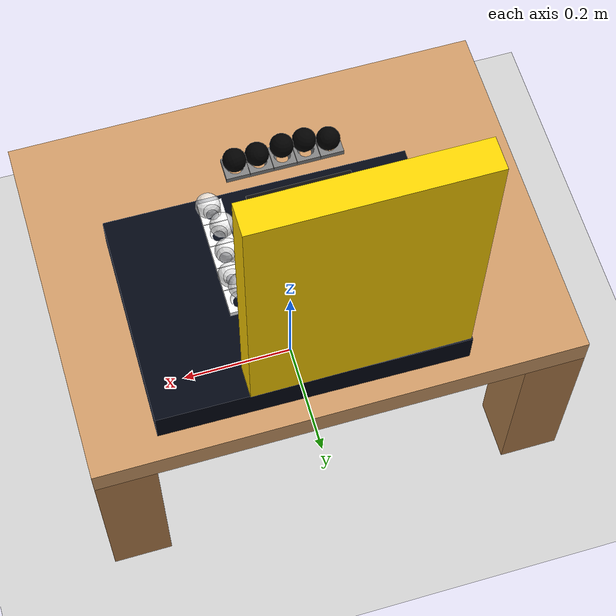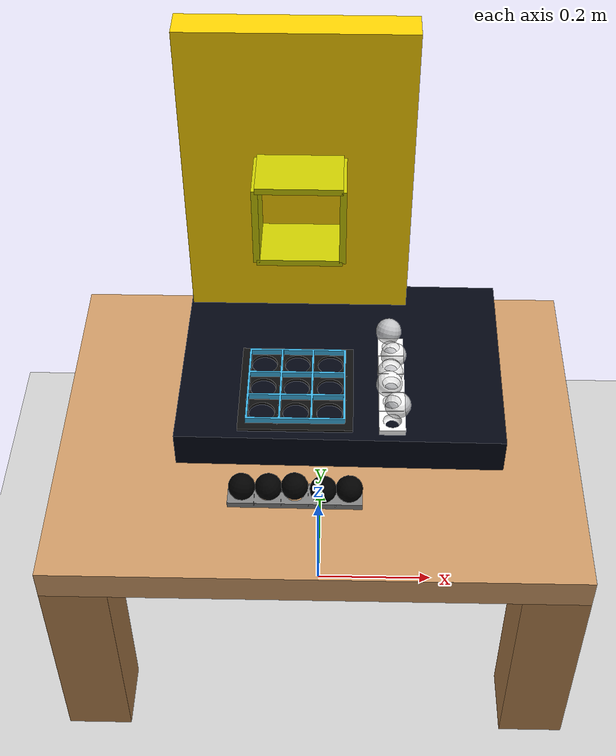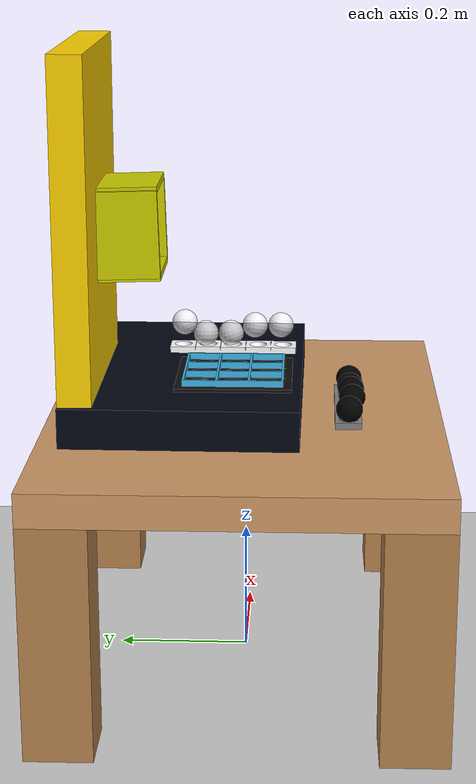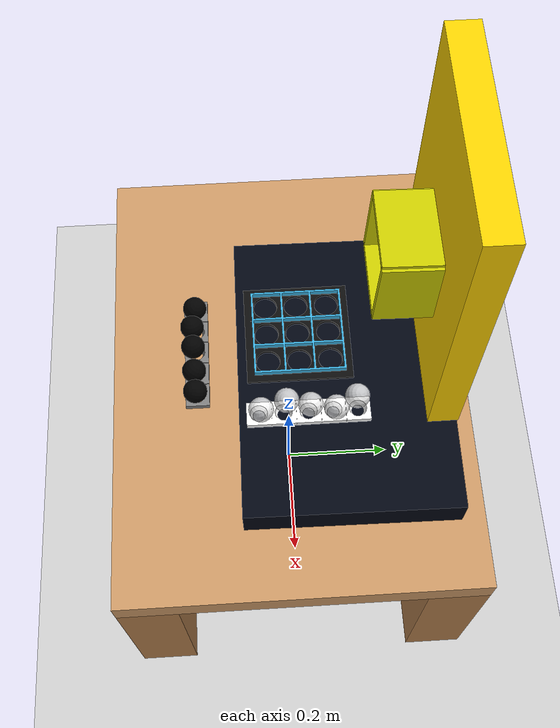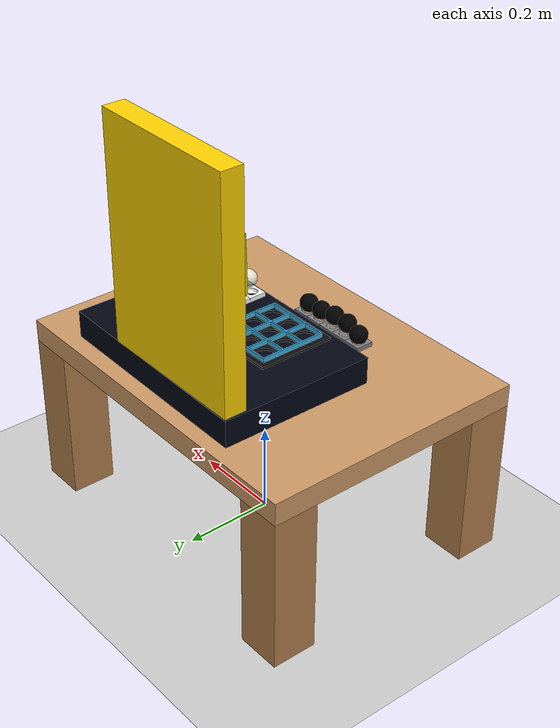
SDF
<sdf version="1.10">
 <world name="WORKINGPROTO">
  <physics name="1ms" type="ignored">
   <max_step_size>0.001</max_step_size>
   <real_time_factor>1</real_time_factor>
   <real_time_update_rate>1000</real_time_update_rate>
  </physics>
  <plugin name="gz::sim::systems::Physics" filename="gz-sim-physics-system"/>
  <plugin name="gz::sim::systems::UserCommands" filename="gz-sim-user-commands-system"/>
  <plugin name="gz::sim::systems::SceneBroadcaster" filename="gz-sim-scene-broadcaster-system"/>
  <gravity>0 0 -9.8000000000000007</gravity>
  <magnetic_field>5.5644999999999998e-06 2.2875799999999999e-05 -4.2388400000000002e-05</magnetic_field>
  <atmosphere type="adiabatic"/>
  <scene>
   <ambient>0.400000006 0.400000006 0.400000006 1</ambient>
   <background>0.699999988 0.699999988 0.699999988 1</background>
   <shadows>true</shadows>
  </scene>
  <model name="ground_plane">
   <static>true</static>
   <link name="link">
    <collision name="collision">
     <geometry><plane><normal>0 0 1</normal><size>100 100</size></plane></geometry>
     <surface>
      <contact><collide_bitmask>65535</collide_bitmask><ode><mu>100</mu><mu2>50</mu2></ode></contact>
      <friction><ode><mu>100</mu><mu2>50</mu2></ode></friction>
     </surface>
    </collision>
    <visual name="visual">
     <cast_shadows>false</cast_shadows>
     <geometry><plane><normal>0 0 1</normal><size>100 100</size></plane></geometry>
     <material>
      <ambient>0.800000012 0.800000012 0.800000012 1</ambient>
      <diffuse>0.800000012 0.800000012 0.800000012 1</diffuse>
      <specular>0 0 0 1</specular>
     </material>
    </visual>
    <inertial>
     <mass>1</mass>
     <inertia><ixx>1</ixx><ixy>0</ixy><ixz>0</ixz><iyy>1</iyy><iyz>0</iyz><izz>1</izz></inertia>
    </inertial>
   </link>
  </model>
  <model name="study_table">
   <static>true</static>
   <link name="table_link">
    <inertial>
     <mass>50</mass>
     <inertia><ixx>10</ixx><iyy>8</iyy><izz>6</izz><ixy>0</ixy><ixz>0</ixz><iyz>0</iyz></inertia>
    </inertial>
    <visual name="table_top">
     <pose>0 0 0.375 0 0 0</pose>
     <geometry><box><size>0.80000000000000004 0.59999999999999998 0.050000000000000003</size></box></geometry>
     <material>
      <ambient>0.800000012 0.600000024 0.400000006 1</ambient>
      <diffuse>0.800000012 0.600000024 0.400000006 1</diffuse>
     </material>
    </visual>
    <visual name="table_leg1">
     <pose>0.34999999999999998 0.25 0.17499999999999999 0 0 0</pose>
     <geometry><box><size>0.10000000000000001 0.10000000000000001 0.34999999999999998</size></box></geometry>
     <material>
      <ambient>0.699999988 0.5 0.300000012 1</ambient>
      <diffuse>0.699999988 0.5 0.300000012 1</diffuse>
     </material>
    </visual>
    <visual name="table_leg2">
     <pose>-0.34999999999999998 0.25 0.17499999999999999 0 0 0</pose>
     <geometry><box><size>0.10000000000000001 0.10000000000000001 0.34999999999999998</size></box></geometry>
     <material>
      <ambient>0.699999988 0.5 0.300000012 1</ambient>
      <diffuse>0.699999988 0.5 0.300000012 1</diffuse>
     </material>
    </visual>
    <visual name="table_leg3">
     <pose>0.34999999999999998 -0.25 0.17499999999999999 0 0 0</pose>
     <geometry><box><size>0.10000000000000001 0.10000000000000001 0.34999999999999998</size></box></geometry>
     <material>
      <ambient>0.699999988 0.5 0.300000012 1</ambient>
      <diffuse>0.699999988 0.5 0.300000012 1</diffuse>
     </material>
    </visual>
    <visual name="table_leg4">
     <pose>-0.34999999999999998 -0.25 0.17499999999999999 0 0 0</pose>
     <geometry><box><size>0.10000000000000001 0.10000000000000001 0.34999999999999998</size></box></geometry>
     <material>
      <ambient>0.699999988 0.5 0.300000012 1</ambient>
      <diffuse>0.699999988 0.5 0.300000012 1</diffuse>
     </material>
    </visual>
    <collision name="table_collision">
     <pose>0 0 0.375 0 0 0</pose>
     <geometry><box><size>0.80000000000000004 0.59999999999999998 0.050000000000000003</size></box></geometry>
    </collision>
   </link>
  </model>
  <model name="guard_rail">
   <static>true</static>
   <pose>-0.13008174300193787 -0.079355299472808838 0.43519699573516846 0 0 0</pose>
   <link name="rail_link">
    <inertial>
     <mass>10</mass>
     <inertia><ixx>1</ixx><iyy>1</iyy><izz>1</izz><ixy>0</ixy><ixz>0</ixz><iyz>0</iyz></inertia>
    </inertial>
    <visual name="rail_visual">
     <geometry>
      <mesh>
       <scale>0.001 0.001 0.001</scale>
       <uri>file:///home/sukritchopra/ros2_ws/src/jetrover_description/models/jetrover/meshes_1/EXTERNAL_MESHES/GUARD_RAILS6.stl</uri>
      </mesh>
     </geometry>
     <material>
      <ambient>0.235294119 0.70588237 0.90196079 1</ambient>
      <diffuse>0.235294119 0.70588237 0.90196079 1</diffuse>
     </material>
    </visual>
    <collision name="rail_collision">
     <geometry>
      <mesh>
       <scale>0.001 0.001 0.001</scale>
       <uri>file:///home/sukritchopra/ros2_ws/src/jetrover_description/models/jetrover/meshes_1/EXTERNAL_MESHES/GUARD_RAILS6.stl</uri>
      </mesh>
     </geometry>
    </collision>
   </link>
  </model>
  <model name="wall">
   <static>true</static>
   <pose>-0.035567201673984528 0.23947399854660034 0.86184102296829224 0 0 0</pose>
   <link name="wall_link">
    <inertial>
     <mass>20000000</mass>
     <inertia>
      <ixx>1.6699999999999999</ixx>
      <iyy>2.6699999999999999</iyy>
      <izz>1.0700000000000001</izz>
      <ixy>0</ixy>
      <ixz>0</ixz>
      <iyz>0</iyz>
     </inertia>
    </inertial>
    <visual name="wall_base">
     <pose>0 0 -0.14999999999999999 0 0 0</pose>
     <geometry><box><size>0.34999999999999998 0.050000000000000003 0.5</size></box></geometry>
     <material><ambient>1 0.824000001 0 1</ambient><diffuse>1 0.824000001 0 1</diffuse></material>
    </visual>
    <collision name="wall_base_collision">
     <pose>0 0 -0.14999999999999999 0 0 0</pose>
     <geometry><box><size>0.34999999999999998 0.050000000000000003 0.49999999999999978</size></box></geometry>
    </collision>
   </link>
  </model>
  <model name="enclosure_floor">
   <static>true</static>
   <pose>0.18506811559200287 0.086792588233947754 0.42550107836723328 1.5699999781232277 -7.7078375414138466e-06 1.5605699752823263</pose>
   <link name="enclosure_floor_link">
    <inertial>
     <mass>20000000</mass>
     <inertia>
      <ixx>1.6699999999999999</ixx>
      <iyy>2.6699999999999999</iyy>
      <izz>1.0700000000000001</izz>
      <ixy>0</ixy>
      <ixz>0</ixz>
      <iyz>0</iyz>
     </inertia>
    </inertial>
    <visual name="enclosure_floor_base">
     <pose>0 0 -0.14999999999999999 0 0 0</pose>
     <geometry><box><size>0.34999999999999998 0.070000000000000007 0.5</size></box></geometry>
     <material>
      <ambient>0 0.00400000019 0.0149999997 1</ambient>
      <diffuse>0.00400000019 0.0199999996 0.0700000003 1</diffuse>
     </material>
    </visual>
    <collision name="enclosure_floor_base_collision">
     <pose>0 0 -0.14999999999999999 0 0 0</pose>
     <geometry><box><size>0.34999999999999998 0.070000000000000007 0.5</size></box></geometry>
    </collision>
   </link>
  </model>
  <model name="tictactoe_game">
   <static>true</static>
   <pose>-0.12158672511577606 -0.071379348635673523 0.44987404346466064 8.8383396642251733e-08 9.0853599959604141e-07 -0.00040046500550608281</pose>
   <link name="board">
    <inertial>
     <mass>2</mass>
     <inertia>
      <ixx>0.10000000000000001</ixx>
      <iyy>0.10000000000000001</iyy>
      <izz>0.10000000000000001</izz>
      <ixy>0</ixy>
      <ixz>0</ixz>
      <iyz>0</iyz>
     </inertia>
    </inertial>
    <visual name="board_visual">
     <geometry>
      <mesh>
       <scale>0.001 0.001 0.001</scale>
       <uri>file:///home/sukritchopra/ros2_ws/src/jetrover_description/models/jetrover/meshes_1/EXTERNAL_MESHES/tictactoe_board3.stl</uri>
      </mesh>
     </geometry>
     <material>
      <ambient>0.0500000007 0.0500000007 0.0500000007 1</ambient>
      <diffuse>0.0500000007 0.0500000007 0.0500000007 1</diffuse>
     </material>
    </visual>
    <collision name="board_collision">
     <geometry>
      <mesh>
       <scale>0.001 0.001 0.001</scale>
       <uri>file:///home/sukritchopra/ros2_ws/src/jetrover_description/models/jetrover/meshes_1/EXTERNAL_MESHES/tictactoe_board3.stl</uri>
      </mesh>
     </geometry>
    </collision>
   </link>
  </model>
  <model name="o_piece_1">
   <static>false</static>
   <pose>0.048889998346567147 -0.15959000587463376 0.43411752581596375 1.0995602395153419 0.00095126979915065952 0.17904404388948791</pose>
   <link name="o_link">
    <inertial>
     <mass>0.0027</mass>
     <inertia><ixx>0.00001</ixx><iyy>0.00001</iyy><izz>0.00001</izz><ixy>0</ixy><ixz>0</ixz><iyz>0</iyz></inertia>
    </inertial>
    <visual name="o_visual">
     <geometry><sphere><radius>0.02</radius></sphere></geometry>
     <material><ambient>0 0 0 1</ambient><diffuse>0 0 0 1</diffuse></material>
    </visual>
    <collision name="o_collision"><geometry><sphere><radius>0.02</radius></sphere></geometry></collision>
   </link>
  </model>
  <model name="o_piece_2">
   <static>false</static>
   <pose>-0.031720213592052446 -0.16102899610996241 0.44032600522041315 0.088685103219420844 -0.13121000430286445 -0.045394301521805437</pose>
   <link name="o_link">
    <inertial>
     <mass>0.0027</mass>
     <inertia><ixx>0.00001</ixx><iyy>0.00001</iyy><izz>0.00001</izz><ixy>0</ixy><ixz>0</ixz><iyz>0</iyz></inertia>
    </inertial>
    <visual name="o_visual">
     <geometry><sphere><radius>0.02</radius></sphere></geometry>
     <material><ambient>0 0 0 1</ambient><diffuse>0 0 0 1</diffuse></material>
    </visual>
    <collision name="o_collision"><geometry><sphere><radius>0.02</radius></sphere></geometry></collision>
   </link>
  </model>
  <model name="o_piece_3">
   <static>false</static>
   <pose>-0.11018435657024386 -0.15712963044643399 0.43295127153396612 -0.35592000756351155 0.16494999421821305 -0.017814999333957932</pose>
   <link name="o_link">
    <inertial>
     <mass>0.0027</mass>
     <inertia><ixx>0.00001</ixx><iyy>0.00001</iyy><izz>0.00001</izz><ixy>0</ixy><ixz>0</ixz><iyz>0</iyz></inertia>
    </inertial>
    <visual name="o_visual">
     <geometry><sphere><radius>0.02</radius></sphere></geometry>
     <material><ambient>0 0 0 1</ambient><diffuse>0 0 0 1</diffuse></material>
    </visual>
    <collision name="o_collision"><geometry><sphere><radius>0.02</radius></sphere></geometry></collision>
   </link>
  </model>
  <model name="o_piece_4">
   <static>false</static>
   <pose>0.010320239700377017 -0.16068400442600247 0.43362399935722357 -2.5435899730425939 -0.28917902160370917 -2.2810399783643338</pose>
   <link name="o_link">
    <inertial>
     <mass>0.0027</mass>
     <inertia><ixx>0.00001</ixx><iyy>0.00001</iyy><izz>0.00001</izz><ixy>0</ixy><ixz>0</ixz><iyz>0</iyz></inertia>
    </inertial>
    <visual name="o_visual">
     <geometry><sphere><radius>0.02</radius></sphere></geometry>
     <material><ambient>0 0 0 1</ambient><diffuse>0 0 0 1</diffuse></material>
    </visual>
    <collision name="o_collision"><geometry><sphere><radius>0.02</radius></sphere></geometry></collision>
   </link>
  </model>
  <model name="o_piece_5">
   <static>false</static>
   <pose>-0.070165134966373416 -0.16201399266719821 0.43920800089836121 0.029897100712414165 -0.27779300828984804 0.062587499398944174</pose>
   <link name="o_link">
    <inertial>
     <mass>0.0027</mass>
     <inertia><ixx>0.00001</ixx><iyy>0.00001</iyy><izz>0.00001</izz><ixy>0</ixy><ixz>0</ixz><iyz>0</iyz></inertia>
    </inertial>
    <visual name="o_visual">
     <geometry><sphere><radius>0.02</radius></sphere></geometry>
     <material><ambient>0 0 0 1</ambient><diffuse>0 0 0 1</diffuse></material>
    </visual>
    <collision name="o_collision"><geometry><sphere><radius>0.02</radius></sphere></geometry></collision>
   </link>
  </model>
  <model name="robot_box">
   <static>true</static>
   <pose>-0.03110777772963047 0.1767670065164566 0.6901090145111084 1.5400000109655501 0 0</pose>
   <link name="box_link">
    <inertial>
     <mass>5</mass>
     <inertia>
      <ixx>0.10000000000000001</ixx>
      <iyy>0.10000000000000001</iyy>
      <izz>0.10000000000000001</izz>
      <ixy>0</ixy>
      <ixz>0</ixz>
      <iyz>0</iyz>
     </inertia>
    </inertial>
    <visual name="front_wall">
     <pose>0.065000000000000002 0 0 0 0 0</pose>
     <geometry><box><size>0.01 0.13 0.105</size></box></geometry>
     <material>
      <ambient>0.800000012 0.800000012 3.00000003e-09 1</ambient>
      <diffuse>0.800000012 0.800000012 3.00000003e-09 1</diffuse>
     </material>
    </visual>
    <collision name="front_wall_collision">
     <pose>0.065000000000000002 0 0 0 0 0</pose>
     <geometry><box><size>0.01 0.13 0.105</size></box></geometry>
    </collision>
    <visual name="back_wall">
     <pose>-0.065000000000000002 0 0 0 0 0</pose>
     <geometry><box><size>0.01 0.13 0.105</size></box></geometry>
     <material>
      <ambient>0.800000012 0.800000012 3.00000003e-09 1</ambient>
      <diffuse>0.800000012 0.800000012 3.00000003e-09 1</diffuse>
     </material>
    </visual>
    <collision name="back_wall_collision">
     <pose>-0.065000000000000002 0 0 0 0 0</pose>
     <geometry><box><size>0.01 0.13 0.105</size></box></geometry>
    </collision>
    <visual name="left_wall">
     <pose>0 0.065000000000000002 0 0 0 0</pose>
     <geometry><box><size>0.13 0.01 0.105</size></box></geometry>
     <material>
      <ambient>0.800000012 0.800000072 3.00000003e-09 1</ambient>
      <diffuse>0.800000012 0.800000012 3.00000003e-09 1</diffuse>
     </material>
    </visual>
    <collision name="left_wall_collision">
     <pose>0 0.065000000000000002 0 0 0 0</pose>
     <geometry><box><size>0.13 0.01 0.105</size></box></geometry>
    </collision>
    <visual name="right_wall">
     <pose>0 -0.065000000000000002 0 0 0 0</pose>
     <geometry><box><size>0.13 0.01 0.105</size></box></geometry>
     <material>
      <ambient>0.800000012 0.800000012 3.00000003e-09 1</ambient>
      <diffuse>0.800000012 0.800000012 3.00000003e-09 1</diffuse>
     </material>
    </visual>
    <collision name="right_wall_collision">
     <pose>0 -0.065000000000000002 0 0 0 0</pose>
     <geometry><box><size>0.13 0.01 0.105</size></box></geometry>
    </collision>
   </link>
  </model>
  <model name="x_piece_1">
   <static>false</static>
   <pose>0.10719395428895956 -0.010332060977816578 0.50374704599380493 0.12240500700939549 0.28435399921445698 -0.033669800754770773</pose>
   <link name="x_link">
    <inertial>
     <mass>0.0027</mass>
     <inertia><ixx>0.00001</ixx><iyy>0.00001</iyy><izz>0.00001</izz><ixy>0</ixy><ixz>0</ixz><iyz>0</iyz></inertia>
    </inertial>
    <visual name="x_visual">
     <geometry><sphere><radius>0.02</radius></sphere></geometry>
     <material><ambient>1 1 1 0.800000012</ambient><diffuse>1 1 1 0.800000012</diffuse></material>
    </visual>
    <collision name="x_collision"><geometry><sphere><radius>0.02</radius></sphere></geometry></collision>
   </link>
  </model>
  <model name="x_piece_2">
   <static>false</static>
   <pose>0.11591972410678866 0.068786889314651503 0.48768323659896856 0.018095103556178656 0.074140713539058281 -0.060699815093356625</pose>
   <link name="x_link">
    <inertial>
     <mass>0.0027</mass>
     <inertia><ixx>0.00001</ixx><iyy>0.00001</iyy><izz>0.00001</izz><ixy>0</ixy><ixz>0</ixz><iyz>0</iyz></inertia>
    </inertial>
    <visual name="x_visual">
     <geometry><sphere><radius>0.02</radius></sphere></geometry>
     <material><ambient>1 1 1 0.800000012</ambient><diffuse>1 1 1 0.800000012</diffuse></material>
    </visual>
    <collision name="x_collision"><geometry><sphere><radius>0.02</radius></sphere></geometry></collision>
   </link>
  </model>
  <model name="x_piece_3">
   <static>false</static>
   <pose>0.10787877440452573 0.10182945430278779 0.50768119096755993 -0.48764598680590604 0.13936599838416033 -0.19172599966152221</pose>
   <link name="x_link">
    <inertial>
     <mass>0.0027</mass>
     <inertia><ixx>0.00001</ixx><iyy>0.00001</iyy><izz>0.00001</izz><ixy>0</ixy><ixz>0</ixz><iyz>0</iyz></inertia>
    </inertial>
    <visual name="x_visual">
     <geometry><sphere><radius>0.02</radius></sphere></geometry>
     <material><ambient>1 1 1 0.800000012</ambient><diffuse>1 1 1 0.800000012</diffuse></material>
    </visual>
    <collision name="x_collision"><geometry><sphere><radius>0.02</radius></sphere></geometry></collision>
   </link>
  </model>
  <model name="x_piece_4">
   <static>false</static>
   <pose>0.1195742338895798 -0.051368568092584603 0.50086212158203125 0.21102500270390748 0.11792400144464195 -0.0159719997788191</pose>
   <link name="x_link">
    <inertial>
     <mass>0.0027</mass>
     <inertia><ixx>0.00001</ixx><iyy>0.00001</iyy><izz>0.00001</izz><ixy>0</ixy><ixz>0</ixz><iyz>0</iyz></inertia>
    </inertial>
    <visual name="x_visual">
     <geometry><sphere><radius>0.02</radius></sphere></geometry>
     <material><ambient>1 1 1 0.800000012</ambient><diffuse>1 1 1 0.800000012</diffuse></material>
    </visual>
    <collision name="x_collision"><geometry><sphere><radius>0.02</radius></sphere></geometry></collision>
   </link>
  </model>
  <model name="x_piece_5">
   <static>false</static>
   <pose>0.10989312827587125 0.028121132403612175 0.48991683125495911 -0.29124505965303693 0.052572610674419755 -0.043051709744201805</pose>
   <link name="x_link">
    <inertial>
     <mass>0.0027</mass>
     <inertia><ixx>0.00001</ixx><iyy>0.00001</iyy><izz>0.00001</izz><ixy>0</ixy><ixz>0</ixz><iyz>0</iyz></inertia>
    </inertial>
    <visual name="x_visual">
     <geometry><sphere><radius>0.02</radius></sphere></geometry>
     <material><ambient>1 1 1 0.800000012</ambient><diffuse>1 1 1 0.800000012</diffuse></material>
    </visual>
    <collision name="x_collision"><geometry><sphere><radius>0.02</radius></sphere></geometry></collision>
   </link>
  </model>
  <model name="ball_store_grey">
   <static>true</static>
   <pose>0.068580798804759979 -0.1370290070772171 0.40764310956001282 0 0 3.1363899998849982</pose>
   <link name="ball_store_link">
    <inertial>
     <mass>1</mass>
     <inertia>
      <ixx>0.10000000000000001</ixx>
      <iyy>0.10000000000000001</iyy>
      <izz>0.10000000000000001</izz>
      <ixy>0</ixy>
      <ixz>0</ixz>
      <iyz>0</iyz>
     </inertia>
    </inertial>
    <visual name="ball_store_visual">
     <geometry>
      <mesh>
       <scale>0.001 0.001 0.001</scale>
       <uri>file:///home/sukritchopra/ros2_ws/src/jetrover_description/models/jetrover/meshes_1/EXTERNAL_MESHES/BALLSTORE2.stl</uri>
      </mesh>
     </geometry>
     <material><ambient>0.5 0.5 0.5 1</ambient><diffuse>0.5 0.5 0.5 1</diffuse></material>
    </visual>
    <collision name="ball_store_collision">
     <geometry>
      <mesh>
       <scale>0.001 0.001 0.001</scale>
       <uri>file:///home/sukritchopra/ros2_ws/src/jetrover_description/models/jetrover/meshes_1/EXTERNAL_MESHES/BALLSTORE2.stl</uri>
      </mesh>
     </geometry>
    </collision>
   </link>
  </model>
  <model name="ball_store_white">
   <static>true</static>
   <pose>0.13258412480354309 -0.075388170778751373 0.46037998795509338 0 0 1.5712599421281468</pose>
   <link name="ball_store_link">
    <inertial>
     <mass>1</mass>
     <inertia>
      <ixx>0.10000000000000001</ixx>
      <iyy>0.10000000000000001</iyy>
      <izz>0.10000000000000001</izz>
      <ixy>0</ixy>
      <ixz>0</ixz>
      <iyz>0</iyz>
     </inertia>
    </inertial>
    <visual name="ball_store_visual">
     <geometry>
      <mesh>
       <scale>0.001 0.001 0.001</scale>
       <uri>file:///home/sukritchopra/ros2_ws/src/jetrover_description/models/jetrover/meshes_1/EXTERNAL_MESHES/BALLSTORE2.stl</uri>
      </mesh>
     </geometry>
     <material><ambient>1 1 1 1</ambient><diffuse>1 1 1 1</diffuse></material>
    </visual>
    <collision name="ball_store_collision">
     <geometry>
      <mesh>
       <scale>0.001 0.001 0.001</scale>
       <uri>file:///home/sukritchopra/ros2_ws/src/jetrover_description/models/jetrover/meshes_1/EXTERNAL_MESHES/BALLSTORE2.stl</uri>
      </mesh>
     </geometry>
    </collision>
   </link>
  </model>
  <light name="sun" type="directional">
   <pose>0 0 10 0 0 0</pose>
   <intensity>1</intensity>
   <direction>-0.5 0.10000000000000001 -0.90000000000000002</direction>
   <diffuse>0.800000012 0.800000012 0.800000012 1</diffuse>
   <specular>0.200000003 0.200000003 0.200000003 1</specular>
   <attenuation>
    <range>1000</range>
    <linear>0.0099999997764825821</linear>
    <constant>0.89999997615814209</constant>
    <quadratic>0.0010000000474974513</quadratic>
   </attenuation>
   <spot><inner_angle>0</inner_angle><outer_angle>0</outer_angle><falloff>0</falloff></spot>
  </light>
 </world>
</sdf>
